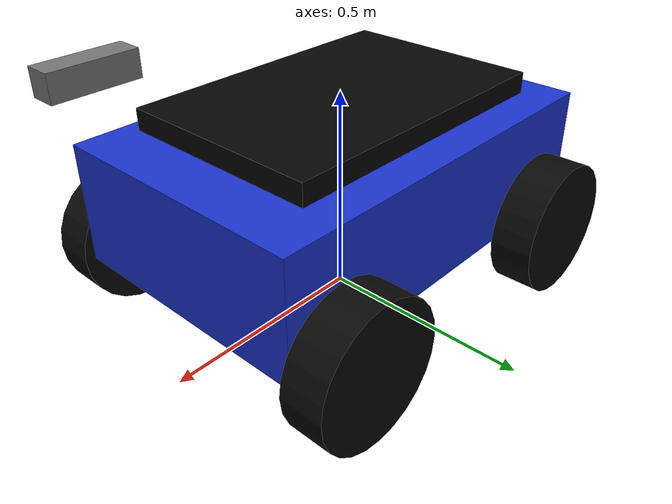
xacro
<?xml version="1.0"?>
<robot name="pmocha_ground_robot" xmlns:xacro="http://www.ros.org/wiki/xacro">
  <xacro:arg name="namespace" default="pmocha"/>
  <xacro:arg name="depth_range_max" default="8.0"/>

  <xacro:property name="M_PI" value="3.1415926535897931"/>

  <link name="base_footprint"/>

  <joint name="base_footprint_joint" type="fixed">
    <origin xyz="0 0 0.12" rpy="0 0 0"/>
    <parent link="base_footprint"/>
    <child link="base_link"/>
  </joint>

  <link name="base_link">
    <visual>
      <origin xyz="0 0 0.18" rpy="0 0 0"/>
      <geometry>
        <box size="0.95 0.62 0.28"/>
      </geometry>
      <material name="base_blue">
        <color rgba="0.1 0.2 0.8 1.0"/>
      </material>
    </visual>
    <collision>
      <origin xyz="0 0 0.18" rpy="0 0 0"/>
      <geometry>
        <box size="0.95 0.62 0.28"/>
      </geometry>
    </collision>
    <inertial>
      <origin xyz="0 0 0.18" rpy="0 0 0"/>
      <mass value="18.0"/>
      <inertia ixx="0.45" ixy="0.0" ixz="0.0" iyy="0.75" iyz="0.0" izz="0.90"/>
    </inertial>
  </link>

  <link name="top_plate">
    <visual>
      <origin xyz="0 0 0.36" rpy="0 0 0"/>
      <geometry>
        <box size="0.72 0.48 0.05"/>
      </geometry>
      <material name="top_black">
        <color rgba="0.02 0.02 0.02 1.0"/>
      </material>
    </visual>
  </link>

  <joint name="top_plate_joint" type="fixed">
    <origin xyz="0 0 0" rpy="0 0 0"/>
    <parent link="base_link"/>
    <child link="top_plate"/>
  </joint>

  <xacro:macro name="pmocha_wheel" params="name x y">
    <link name="${name}">
      <visual>
        <origin xyz="0 0 0" rpy="${M_PI/2} 0 0"/>
        <geometry>
          <cylinder radius="0.16" length="0.10"/>
        </geometry>
        <material name="wheel_black">
          <color rgba="0.03 0.03 0.03 1.0"/>
        </material>
      </visual>
      <collision>
        <origin xyz="0 0 0" rpy="${M_PI/2} 0 0"/>
        <geometry>
          <cylinder radius="0.16" length="0.10"/>
        </geometry>
      </collision>
      <inertial>
        <mass value="1.2"/>
        <inertia ixx="0.012" ixy="0.0" ixz="0.0" iyy="0.012" iyz="0.0" izz="0.018"/>
      </inertial>
    </link>
    <joint name="${name}_joint" type="fixed">
      <origin xyz="${x} ${y} 0.04" rpy="0 0 0"/>
      <parent link="base_link"/>
      <child link="${name}"/>
    </joint>
  </xacro:macro>

  <xacro:pmocha_wheel name="front_left_wheel" x="0.34" y="0.36"/>
  <xacro:pmocha_wheel name="front_right_wheel" x="0.34" y="-0.36"/>
  <xacro:pmocha_wheel name="rear_left_wheel" x="-0.34" y="0.36"/>
  <xacro:pmocha_wheel name="rear_right_wheel" x="-0.34" y="-0.36"/>

  <link name="d435_link">
    <visual>
      <geometry>
        <box size="0.16 0.05 0.05"/>
      </geometry>
      <material name="camera_gray">
        <color rgba="0.45 0.45 0.45 1.0"/>
      </material>
    </visual>
    <collision>
      <geometry>
        <box size="0.09 0.03 0.03"/>
      </geometry>
    </collision>
    <inertial>
      <mass value="0.2"/>
      <inertia ixx="0.001" ixy="0.0" ixz="0.0" iyy="0.001" iyz="0.0" izz="0.001"/>
    </inertial>
  </link>

  <joint name="d435_joint" type="fixed">
    <origin xyz="0.58 0.0 0.58" rpy="0 0 0"/>
    <parent link="base_link"/>
    <child link="d435_link"/>
  </joint>

  <link name="d435_depth_frame"/>
  <joint name="d435_depth_joint" type="fixed">
    <origin xyz="0 0 0" rpy="0 0 0"/>
    <parent link="d435_link"/>
    <child link="d435_depth_frame"/>
  </joint>

  <link name="d435_depth_optical_frame"/>
  <joint name="d435_depth_optical_joint" type="fixed">
    <origin xyz="0 0 0" rpy="${-M_PI/2} 0 ${-M_PI/2}"/>
    <parent link="d435_depth_frame"/>
    <child link="d435_depth_optical_frame"/>
  </joint>

  <gazebo reference="base_link">
    <self_collide>false</self_collide>
    <mu1>1.0</mu1>
    <mu2>1.0</mu2>
  </gazebo>

  <gazebo reference="d435_link">
    <sensor name="d435_depth" type="depth">
      <always_on>true</always_on>
      <update_rate>10</update_rate>
      <visualize>true</visualize>
      <camera>
        <horizontal_fov>1.487</horizontal_fov>
        <image>
          <width>160</width>
          <height>120</height>
          <format>R8G8B8</format>
        </image>
        <depth_camera>
        </depth_camera>
        <clip>
          <near>0.10</near>
          <far>$(arg depth_range_max)</far>
        </clip>
      </camera>
      <plugin name="d435_depth_controller" filename="libgazebo_ros_camera.so">
        <ros>
          <namespace>/$(arg namespace)</namespace>
          <remapping>d435/image_raw:=d435/color/image_raw</remapping>
          <remapping>d435/depth/image_raw:=d435/depth/image_raw</remapping>
          <remapping>d435/camera_info:=d435/color/camera_info</remapping>
          <remapping>d435/depth/camera_info:=d435/depth/camera_info</remapping>
          <remapping>d435/points:=d435/depth/color/points</remapping>
        </ros>
        <camera_name>d435</camera_name>
        <frame_name>d435_depth_optical_frame</frame_name>
        <min_depth>0.10</min_depth>
        <max_depth>$(arg depth_range_max)</max_depth>
      </plugin>
    </sensor>
  </gazebo>
</robot>
